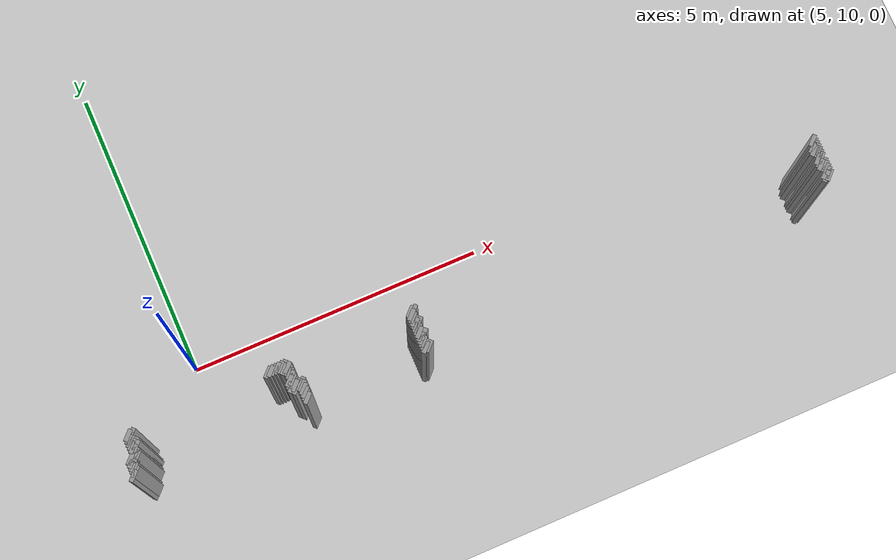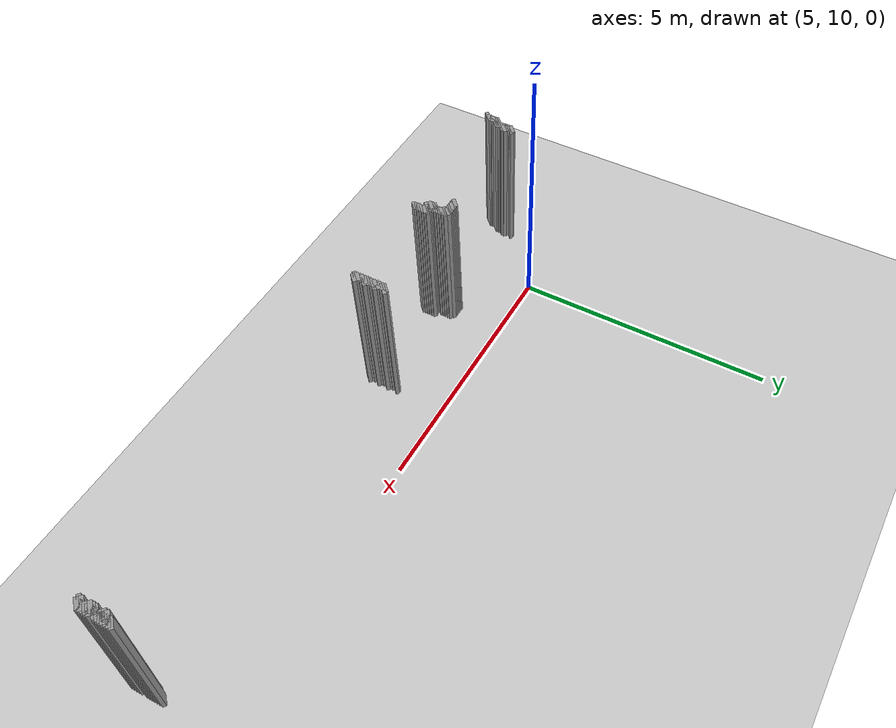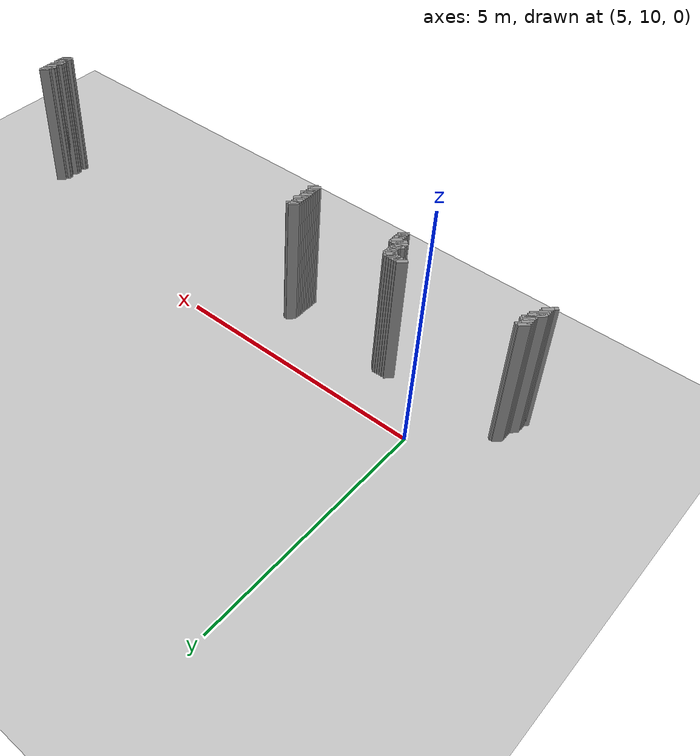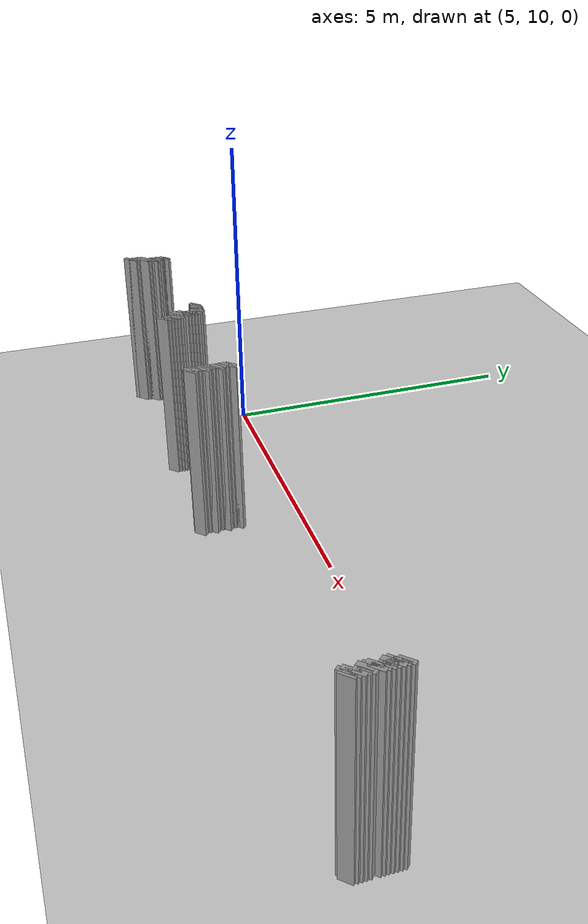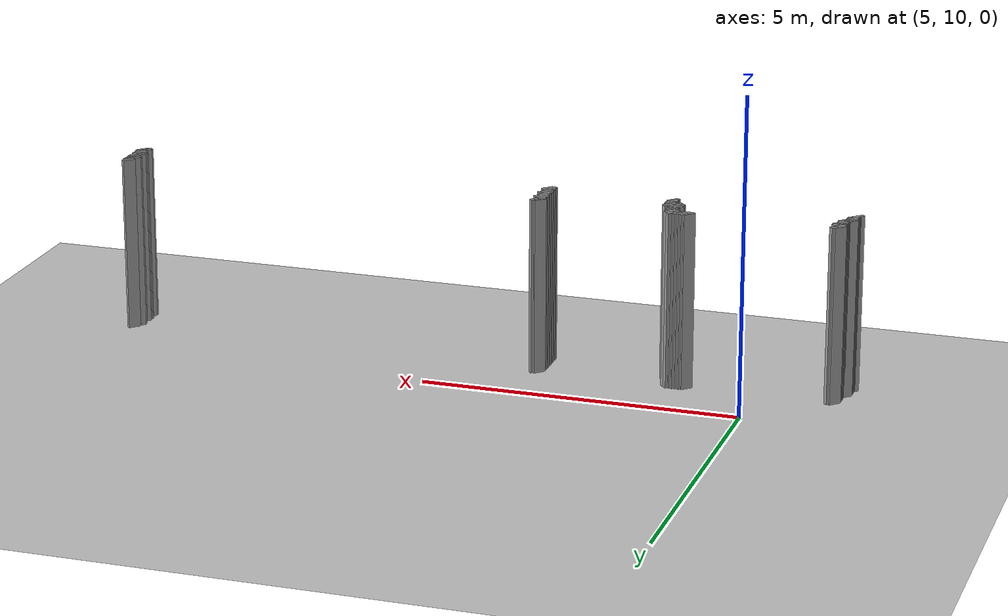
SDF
<sdf version="1.5">
 <world name="default">
  <include><uri>model://ground_plane</uri></include>
  <include><uri>model://sun</uri></include>
  <model name="grey_wall_1167">
   <static>1</static>
   <link name="link">
    <pose>6.1 9.0  1.4 0 0 -0.785398163397</pose>
    <collision name="collision"><geometry><box><size>0.0707106781187 .2  2.8</size></box></geometry></collision>
    <visual name="visual">
     <cast_shadows>0</cast_shadows>
     <geometry><box><size>0.0707106781187 .2  2.8</size></box></geometry>
     <material>
      <script>
       <uri>model://grey_wall/materials/scripts</uri>
       <uri>model://grey_wall/materials/textures</uri>
       <name>vrc/grey_wall</name>
      </script>
     </material>
    </visual>
   </link>
  </model>
  <model name="grey_wall_1168">
   <static>1</static>
   <link name="link">
    <pose>6.15 9.0  1.4 0 0 -0.785398163397</pose>
    <collision name="collision"><geometry><box><size>0.0707106781187 .2  2.8</size></box></geometry></collision>
    <visual name="visual">
     <cast_shadows>0</cast_shadows>
     <geometry><box><size>0.0707106781187 .2  2.8</size></box></geometry>
     <material>
      <script>
       <uri>model://grey_wall/materials/scripts</uri>
       <uri>model://grey_wall/materials/textures</uri>
       <name>vrc/grey_wall</name>
      </script>
     </material>
    </visual>
   </link>
  </model>
  <model name="grey_wall_1169">
   <static>1</static>
   <link name="link">
    <pose>6.2 9.0  1.4 0 0 -0.785398163397</pose>
    <collision name="collision"><geometry><box><size>0.0707106781187 .2  2.8</size></box></geometry></collision>
    <visual name="visual">
     <cast_shadows>0</cast_shadows>
     <geometry><box><size>0.0707106781187 .2  2.8</size></box></geometry>
     <material>
      <script>
       <uri>model://grey_wall/materials/scripts</uri>
       <uri>model://grey_wall/materials/textures</uri>
       <name>vrc/grey_wall</name>
      </script>
     </material>
    </visual>
   </link>
  </model>
  <model name="grey_wall_1170">
   <static>1</static>
   <link name="link">
    <pose>6.25 9.0  1.4 0 0 -0.785398163397</pose>
    <collision name="collision"><geometry><box><size>0.0707106781187 .2  2.8</size></box></geometry></collision>
    <visual name="visual">
     <cast_shadows>0</cast_shadows>
     <geometry><box><size>0.0707106781187 .2  2.8</size></box></geometry>
     <material>
      <script>
       <uri>model://grey_wall/materials/scripts</uri>
       <uri>model://grey_wall/materials/textures</uri>
       <name>vrc/grey_wall</name>
      </script>
     </material>
    </visual>
   </link>
  </model>
  <model name="grey_wall_1171">
   <static>1</static>
   <link name="link">
    <pose>6.3 9.0  1.4 0 0 -0.785398163397</pose>
    <collision name="collision"><geometry><box><size>0.0707106781187 .2  2.8</size></box></geometry></collision>
    <visual name="visual">
     <cast_shadows>0</cast_shadows>
     <geometry><box><size>0.0707106781187 .2  2.8</size></box></geometry>
     <material>
      <script>
       <uri>model://grey_wall/materials/scripts</uri>
       <uri>model://grey_wall/materials/textures</uri>
       <name>vrc/grey_wall</name>
      </script>
     </material>
    </visual>
   </link>
  </model>
  <model name="grey_wall_1172">
   <static>1</static>
   <link name="link">
    <pose>6.35 9.0  1.4 0 0 -0.785398163397</pose>
    <collision name="collision"><geometry><box><size>0.0707106781187 .2  2.8</size></box></geometry></collision>
    <visual name="visual">
     <cast_shadows>0</cast_shadows>
     <geometry><box><size>0.0707106781187 .2  2.8</size></box></geometry>
     <material>
      <script>
       <uri>model://grey_wall/materials/scripts</uri>
       <uri>model://grey_wall/materials/textures</uri>
       <name>vrc/grey_wall</name>
      </script>
     </material>
    </visual>
   </link>
  </model>
  <model name="grey_wall_1173">
   <static>1</static>
   <link name="link">
    <pose>8.45 9.0  1.4 0 0 -0.785398163397</pose>
    <collision name="collision"><geometry><box><size>0.0707106781187 .2  2.8</size></box></geometry></collision>
    <visual name="visual">
     <cast_shadows>0</cast_shadows>
     <geometry><box><size>0.0707106781187 .2  2.8</size></box></geometry>
     <material>
      <script>
       <uri>model://grey_wall/materials/scripts</uri>
       <uri>model://grey_wall/materials/textures</uri>
       <name>vrc/grey_wall</name>
      </script>
     </material>
    </visual>
   </link>
  </model>
  <model name="grey_wall_1174">
   <static>1</static>
   <link name="link">
    <pose>8.5 9.0  1.4 0 0 -0.785398163397</pose>
    <collision name="collision"><geometry><box><size>0.0707106781187 .2  2.8</size></box></geometry></collision>
    <visual name="visual">
     <cast_shadows>0</cast_shadows>
     <geometry><box><size>0.0707106781187 .2  2.8</size></box></geometry>
     <material>
      <script>
       <uri>model://grey_wall/materials/scripts</uri>
       <uri>model://grey_wall/materials/textures</uri>
       <name>vrc/grey_wall</name>
      </script>
     </material>
    </visual>
   </link>
  </model>
  <model name="grey_wall_1175">
   <static>1</static>
   <link name="link">
    <pose>15.25 9.0  1.4 0 0 -0.785398163397</pose>
    <collision name="collision"><geometry><box><size>0.0707106781187 .2  2.8</size></box></geometry></collision>
    <visual name="visual">
     <cast_shadows>0</cast_shadows>
     <geometry><box><size>0.0707106781187 .2  2.8</size></box></geometry>
     <material>
      <script>
       <uri>model://grey_wall/materials/scripts</uri>
       <uri>model://grey_wall/materials/textures</uri>
       <name>vrc/grey_wall</name>
      </script>
     </material>
    </visual>
   </link>
  </model>
  <model name="grey_wall_1176">
   <static>1</static>
   <link name="link">
    <pose>3.8 8.95  1.4 0 0 -0.785398163397</pose>
    <collision name="collision"><geometry><box><size>0.0707106781187 .2  2.8</size></box></geometry></collision>
    <visual name="visual">
     <cast_shadows>0</cast_shadows>
     <geometry><box><size>0.0707106781187 .2  2.8</size></box></geometry>
     <material>
      <script>
       <uri>model://grey_wall/materials/scripts</uri>
       <uri>model://grey_wall/materials/textures</uri>
       <name>vrc/grey_wall</name>
      </script>
     </material>
    </visual>
   </link>
  </model>
  <model name="grey_wall_1177">
   <static>1</static>
   <link name="link">
    <pose>3.85 8.95  1.4 0 0 -0.785398163397</pose>
    <collision name="collision"><geometry><box><size>0.0707106781187 .2  2.8</size></box></geometry></collision>
    <visual name="visual">
     <cast_shadows>0</cast_shadows>
     <geometry><box><size>0.0707106781187 .2  2.8</size></box></geometry>
     <material>
      <script>
       <uri>model://grey_wall/materials/scripts</uri>
       <uri>model://grey_wall/materials/textures</uri>
       <name>vrc/grey_wall</name>
      </script>
     </material>
    </visual>
   </link>
  </model>
  <model name="grey_wall_1178">
   <static>1</static>
   <link name="link">
    <pose>6.35 8.95  1.4 0 0 -0.785398163397</pose>
    <collision name="collision"><geometry><box><size>0.0707106781187 .2  2.8</size></box></geometry></collision>
    <visual name="visual">
     <cast_shadows>0</cast_shadows>
     <geometry><box><size>0.0707106781187 .2  2.8</size></box></geometry>
     <material>
      <script>
       <uri>model://grey_wall/materials/scripts</uri>
       <uri>model://grey_wall/materials/textures</uri>
       <name>vrc/grey_wall</name>
      </script>
     </material>
    </visual>
   </link>
  </model>
  <model name="grey_wall_1179">
   <static>1</static>
   <link name="link">
    <pose>6.4 8.95  1.4 0 0 -0.785398163397</pose>
    <collision name="collision"><geometry><box><size>0.0707106781187 .2  2.8</size></box></geometry></collision>
    <visual name="visual">
     <cast_shadows>0</cast_shadows>
     <geometry><box><size>0.0707106781187 .2  2.8</size></box></geometry>
     <material>
      <script>
       <uri>model://grey_wall/materials/scripts</uri>
       <uri>model://grey_wall/materials/textures</uri>
       <name>vrc/grey_wall</name>
      </script>
     </material>
    </visual>
   </link>
  </model>
  <model name="grey_wall_1180">
   <static>1</static>
   <link name="link">
    <pose>8.45 8.95  1.4 0 0 -0.785398163397</pose>
    <collision name="collision"><geometry><box><size>0.0707106781187 .2  2.8</size></box></geometry></collision>
    <visual name="visual">
     <cast_shadows>0</cast_shadows>
     <geometry><box><size>0.0707106781187 .2  2.8</size></box></geometry>
     <material>
      <script>
       <uri>model://grey_wall/materials/scripts</uri>
       <uri>model://grey_wall/materials/textures</uri>
       <name>vrc/grey_wall</name>
      </script>
     </material>
    </visual>
   </link>
  </model>
  <model name="grey_wall_1181">
   <static>1</static>
   <link name="link">
    <pose>15.25 8.95  1.4 0 0 -0.785398163397</pose>
    <collision name="collision"><geometry><box><size>0.0707106781187 .2  2.8</size></box></geometry></collision>
    <visual name="visual">
     <cast_shadows>0</cast_shadows>
     <geometry><box><size>0.0707106781187 .2  2.8</size></box></geometry>
     <material>
      <script>
       <uri>model://grey_wall/materials/scripts</uri>
       <uri>model://grey_wall/materials/textures</uri>
       <name>vrc/grey_wall</name>
      </script>
     </material>
    </visual>
   </link>
  </model>
  <model name="grey_wall_1182">
   <static>1</static>
   <link name="link">
    <pose>3.8 8.9  1.4 0 0 -0.785398163397</pose>
    <collision name="collision"><geometry><box><size>0.0707106781187 .2  2.8</size></box></geometry></collision>
    <visual name="visual">
     <cast_shadows>0</cast_shadows>
     <geometry><box><size>0.0707106781187 .2  2.8</size></box></geometry>
     <material>
      <script>
       <uri>model://grey_wall/materials/scripts</uri>
       <uri>model://grey_wall/materials/textures</uri>
       <name>vrc/grey_wall</name>
      </script>
     </material>
    </visual>
   </link>
  </model>
  <model name="grey_wall_1183">
   <static>1</static>
   <link name="link">
    <pose>6.4 8.9  1.4 0 0 -0.785398163397</pose>
    <collision name="collision"><geometry><box><size>0.0707106781187 .2  2.8</size></box></geometry></collision>
    <visual name="visual">
     <cast_shadows>0</cast_shadows>
     <geometry><box><size>0.0707106781187 .2  2.8</size></box></geometry>
     <material>
      <script>
       <uri>model://grey_wall/materials/scripts</uri>
       <uri>model://grey_wall/materials/textures</uri>
       <name>vrc/grey_wall</name>
      </script>
     </material>
    </visual>
   </link>
  </model>
  <model name="grey_wall_1184">
   <static>1</static>
   <link name="link">
    <pose>8.45 8.9  1.4 0 0 -0.785398163397</pose>
    <collision name="collision"><geometry><box><size>0.0707106781187 .2  2.8</size></box></geometry></collision>
    <visual name="visual">
     <cast_shadows>0</cast_shadows>
     <geometry><box><size>0.0707106781187 .2  2.8</size></box></geometry>
     <material>
      <script>
       <uri>model://grey_wall/materials/scripts</uri>
       <uri>model://grey_wall/materials/textures</uri>
       <name>vrc/grey_wall</name>
      </script>
     </material>
    </visual>
   </link>
  </model>
  <model name="grey_wall_1185">
   <static>1</static>
   <link name="link">
    <pose>15.2 8.9  1.4 0 0 -0.785398163397</pose>
    <collision name="collision"><geometry><box><size>0.0707106781187 .2  2.8</size></box></geometry></collision>
    <visual name="visual">
     <cast_shadows>0</cast_shadows>
     <geometry><box><size>0.0707106781187 .2  2.8</size></box></geometry>
     <material>
      <script>
       <uri>model://grey_wall/materials/scripts</uri>
       <uri>model://grey_wall/materials/textures</uri>
       <name>vrc/grey_wall</name>
      </script>
     </material>
    </visual>
   </link>
  </model>
  <model name="grey_wall_1186">
   <static>1</static>
   <link name="link">
    <pose>15.25 8.9  1.4 0 0 -0.785398163397</pose>
    <collision name="collision"><geometry><box><size>0.0707106781187 .2  2.8</size></box></geometry></collision>
    <visual name="visual">
     <cast_shadows>0</cast_shadows>
     <geometry><box><size>0.0707106781187 .2  2.8</size></box></geometry>
     <material>
      <script>
       <uri>model://grey_wall/materials/scripts</uri>
       <uri>model://grey_wall/materials/textures</uri>
       <name>vrc/grey_wall</name>
      </script>
     </material>
    </visual>
   </link>
  </model>
  <model name="grey_wall_1187">
   <static>1</static>
   <link name="link">
    <pose>3.8 8.85  1.4 0 0 -0.785398163397</pose>
    <collision name="collision"><geometry><box><size>0.0707106781187 .2  2.8</size></box></geometry></collision>
    <visual name="visual">
     <cast_shadows>0</cast_shadows>
     <geometry><box><size>0.0707106781187 .2  2.8</size></box></geometry>
     <material>
      <script>
       <uri>model://grey_wall/materials/scripts</uri>
       <uri>model://grey_wall/materials/textures</uri>
       <name>vrc/grey_wall</name>
      </script>
     </material>
    </visual>
   </link>
  </model>
  <model name="grey_wall_1188">
   <static>1</static>
   <link name="link">
    <pose>6.4 8.85  1.4 0 0 -0.785398163397</pose>
    <collision name="collision"><geometry><box><size>0.0707106781187 .2  2.8</size></box></geometry></collision>
    <visual name="visual">
     <cast_shadows>0</cast_shadows>
     <geometry><box><size>0.0707106781187 .2  2.8</size></box></geometry>
     <material>
      <script>
       <uri>model://grey_wall/materials/scripts</uri>
       <uri>model://grey_wall/materials/textures</uri>
       <name>vrc/grey_wall</name>
      </script>
     </material>
    </visual>
   </link>
  </model>
  <model name="grey_wall_1189">
   <static>1</static>
   <link name="link">
    <pose>8.45 8.85  1.4 0 0 -0.785398163397</pose>
    <collision name="collision"><geometry><box><size>0.0707106781187 .2  2.8</size></box></geometry></collision>
    <visual name="visual">
     <cast_shadows>0</cast_shadows>
     <geometry><box><size>0.0707106781187 .2  2.8</size></box></geometry>
     <material>
      <script>
       <uri>model://grey_wall/materials/scripts</uri>
       <uri>model://grey_wall/materials/textures</uri>
       <name>vrc/grey_wall</name>
      </script>
     </material>
    </visual>
   </link>
  </model>
  <model name="grey_wall_1190">
   <static>1</static>
   <link name="link">
    <pose>15.2 8.85  1.4 0 0 -0.785398163397</pose>
    <collision name="collision"><geometry><box><size>0.0707106781187 .2  2.8</size></box></geometry></collision>
    <visual name="visual">
     <cast_shadows>0</cast_shadows>
     <geometry><box><size>0.0707106781187 .2  2.8</size></box></geometry>
     <material>
      <script>
       <uri>model://grey_wall/materials/scripts</uri>
       <uri>model://grey_wall/materials/textures</uri>
       <name>vrc/grey_wall</name>
      </script>
     </material>
    </visual>
   </link>
  </model>
  <model name="grey_wall_1191">
   <static>1</static>
   <link name="link">
    <pose>15.25 8.85  1.4 0 0 -0.785398163397</pose>
    <collision name="collision"><geometry><box><size>0.0707106781187 .2  2.8</size></box></geometry></collision>
    <visual name="visual">
     <cast_shadows>0</cast_shadows>
     <geometry><box><size>0.0707106781187 .2  2.8</size></box></geometry>
     <material>
      <script>
       <uri>model://grey_wall/materials/scripts</uri>
       <uri>model://grey_wall/materials/textures</uri>
       <name>vrc/grey_wall</name>
      </script>
     </material>
    </visual>
   </link>
  </model>
  <model name="grey_wall_1192">
   <static>1</static>
   <link name="link">
    <pose>3.8 8.8  1.4 0 0 -0.785398163397</pose>
    <collision name="collision"><geometry><box><size>0.0707106781187 .2  2.8</size></box></geometry></collision>
    <visual name="visual">
     <cast_shadows>0</cast_shadows>
     <geometry><box><size>0.0707106781187 .2  2.8</size></box></geometry>
     <material>
      <script>
       <uri>model://grey_wall/materials/scripts</uri>
       <uri>model://grey_wall/materials/textures</uri>
       <name>vrc/grey_wall</name>
      </script>
     </material>
    </visual>
   </link>
  </model>
  <model name="grey_wall_1193">
   <static>1</static>
   <link name="link">
    <pose>3.85 8.8  1.4 0 0 -0.785398163397</pose>
    <collision name="collision"><geometry><box><size>0.0707106781187 .2  2.8</size></box></geometry></collision>
    <visual name="visual">
     <cast_shadows>0</cast_shadows>
     <geometry><box><size>0.0707106781187 .2  2.8</size></box></geometry>
     <material>
      <script>
       <uri>model://grey_wall/materials/scripts</uri>
       <uri>model://grey_wall/materials/textures</uri>
       <name>vrc/grey_wall</name>
      </script>
     </material>
    </visual>
   </link>
  </model>
  <model name="grey_wall_1194">
   <static>1</static>
   <link name="link">
    <pose>6.4 8.8  1.4 0 0 -0.785398163397</pose>
    <collision name="collision"><geometry><box><size>0.0707106781187 .2  2.8</size></box></geometry></collision>
    <visual name="visual">
     <cast_shadows>0</cast_shadows>
     <geometry><box><size>0.0707106781187 .2  2.8</size></box></geometry>
     <material>
      <script>
       <uri>model://grey_wall/materials/scripts</uri>
       <uri>model://grey_wall/materials/textures</uri>
       <name>vrc/grey_wall</name>
      </script>
     </material>
    </visual>
   </link>
  </model>
  <model name="grey_wall_1195">
   <static>1</static>
   <link name="link">
    <pose>8.45 8.8  1.4 0 0 -0.785398163397</pose>
    <collision name="collision"><geometry><box><size>0.0707106781187 .2  2.8</size></box></geometry></collision>
    <visual name="visual">
     <cast_shadows>0</cast_shadows>
     <geometry><box><size>0.0707106781187 .2  2.8</size></box></geometry>
     <material>
      <script>
       <uri>model://grey_wall/materials/scripts</uri>
       <uri>model://grey_wall/materials/textures</uri>
       <name>vrc/grey_wall</name>
      </script>
     </material>
    </visual>
   </link>
  </model>
  <model name="grey_wall_1196">
   <static>1</static>
   <link name="link">
    <pose>8.5 8.8  1.4 0 0 -0.785398163397</pose>
    <collision name="collision"><geometry><box><size>0.0707106781187 .2  2.8</size></box></geometry></collision>
    <visual name="visual">
     <cast_shadows>0</cast_shadows>
     <geometry><box><size>0.0707106781187 .2  2.8</size></box></geometry>
     <material>
      <script>
       <uri>model://grey_wall/materials/scripts</uri>
       <uri>model://grey_wall/materials/textures</uri>
       <name>vrc/grey_wall</name>
      </script>
     </material>
    </visual>
   </link>
  </model>
  <model name="grey_wall_1197">
   <static>1</static>
   <link name="link">
    <pose>15.25 8.8  1.4 0 0 -0.785398163397</pose>
    <collision name="collision"><geometry><box><size>0.0707106781187 .2  2.8</size></box></geometry></collision>
    <visual name="visual">
     <cast_shadows>0</cast_shadows>
     <geometry><box><size>0.0707106781187 .2  2.8</size></box></geometry>
     <material>
      <script>
       <uri>model://grey_wall/materials/scripts</uri>
       <uri>model://grey_wall/materials/textures</uri>
       <name>vrc/grey_wall</name>
      </script>
     </material>
    </visual>
   </link>
  </model>
  <model name="grey_wall_1198">
   <static>1</static>
   <link name="link">
    <pose>3.8 8.75  1.4 0 0 -0.785398163397</pose>
    <collision name="collision"><geometry><box><size>0.0707106781187 .2  2.8</size></box></geometry></collision>
    <visual name="visual">
     <cast_shadows>0</cast_shadows>
     <geometry><box><size>0.0707106781187 .2  2.8</size></box></geometry>
     <material>
      <script>
       <uri>model://grey_wall/materials/scripts</uri>
       <uri>model://grey_wall/materials/textures</uri>
       <name>vrc/grey_wall</name>
      </script>
     </material>
    </visual>
   </link>
  </model>
  <model name="grey_wall_1199">
   <static>1</static>
   <link name="link">
    <pose>3.85 8.75  1.4 0 0 -0.785398163397</pose>
    <collision name="collision"><geometry><box><size>0.0707106781187 .2  2.8</size></box></geometry></collision>
    <visual name="visual">
     <cast_shadows>0</cast_shadows>
     <geometry><box><size>0.0707106781187 .2  2.8</size></box></geometry>
     <material>
      <script>
       <uri>model://grey_wall/materials/scripts</uri>
       <uri>model://grey_wall/materials/textures</uri>
       <name>vrc/grey_wall</name>
      </script>
     </material>
    </visual>
   </link>
  </model>
  <model name="grey_wall_1200">
   <static>1</static>
   <link name="link">
    <pose>6.35 8.75  1.4 0 0 -0.785398163397</pose>
    <collision name="collision"><geometry><box><size>0.0707106781187 .2  2.8</size></box></geometry></collision>
    <visual name="visual">
     <cast_shadows>0</cast_shadows>
     <geometry><box><size>0.0707106781187 .2  2.8</size></box></geometry>
     <material>
      <script>
       <uri>model://grey_wall/materials/scripts</uri>
       <uri>model://grey_wall/materials/textures</uri>
       <name>vrc/grey_wall</name>
      </script>
     </material>
    </visual>
   </link>
  </model>
  <model name="grey_wall_1201">
   <static>1</static>
   <link name="link">
    <pose>6.4 8.75  1.4 0 0 -0.785398163397</pose>
    <collision name="collision"><geometry><box><size>0.0707106781187 .2  2.8</size></box></geometry></collision>
    <visual name="visual">
     <cast_shadows>0</cast_shadows>
     <geometry><box><size>0.0707106781187 .2  2.8</size></box></geometry>
     <material>
      <script>
       <uri>model://grey_wall/materials/scripts</uri>
       <uri>model://grey_wall/materials/textures</uri>
       <name>vrc/grey_wall</name>
      </script>
     </material>
    </visual>
   </link>
  </model>
  <model name="grey_wall_1202">
   <static>1</static>
   <link name="link">
    <pose>8.45 8.75  1.4 0 0 -0.785398163397</pose>
    <collision name="collision"><geometry><box><size>0.0707106781187 .2  2.8</size></box></geometry></collision>
    <visual name="visual">
     <cast_shadows>0</cast_shadows>
     <geometry><box><size>0.0707106781187 .2  2.8</size></box></geometry>
     <material>
      <script>
       <uri>model://grey_wall/materials/scripts</uri>
       <uri>model://grey_wall/materials/textures</uri>
       <name>vrc/grey_wall</name>
      </script>
     </material>
    </visual>
   </link>
  </model>
  <model name="grey_wall_1203">
   <static>1</static>
   <link name="link">
    <pose>15.25 8.75  1.4 0 0 -0.785398163397</pose>
    <collision name="collision"><geometry><box><size>0.0707106781187 .2  2.8</size></box></geometry></collision>
    <visual name="visual">
     <cast_shadows>0</cast_shadows>
     <geometry><box><size>0.0707106781187 .2  2.8</size></box></geometry>
     <material>
      <script>
       <uri>model://grey_wall/materials/scripts</uri>
       <uri>model://grey_wall/materials/textures</uri>
       <name>vrc/grey_wall</name>
      </script>
     </material>
    </visual>
   </link>
  </model>
  <model name="grey_wall_1204">
   <static>1</static>
   <link name="link">
    <pose>3.8 8.7  1.4 0 0 -0.785398163397</pose>
    <collision name="collision"><geometry><box><size>0.0707106781187 .2  2.8</size></box></geometry></collision>
    <visual name="visual">
     <cast_shadows>0</cast_shadows>
     <geometry><box><size>0.0707106781187 .2  2.8</size></box></geometry>
     <material>
      <script>
       <uri>model://grey_wall/materials/scripts</uri>
       <uri>model://grey_wall/materials/textures</uri>
       <name>vrc/grey_wall</name>
      </script>
     </material>
    </visual>
   </link>
  </model>
  <model name="grey_wall_1205">
   <static>1</static>
   <link name="link">
    <pose>6.35 8.7  1.4 0 0 -0.785398163397</pose>
    <collision name="collision"><geometry><box><size>0.0707106781187 .2  2.8</size></box></geometry></collision>
    <visual name="visual">
     <cast_shadows>0</cast_shadows>
     <geometry><box><size>0.0707106781187 .2  2.8</size></box></geometry>
     <material>
      <script>
       <uri>model://grey_wall/materials/scripts</uri>
       <uri>model://grey_wall/materials/textures</uri>
       <name>vrc/grey_wall</name>
      </script>
     </material>
    </visual>
   </link>
  </model>
  <model name="grey_wall_1206">
   <static>1</static>
   <link name="link">
    <pose>8.45 8.7  1.4 0 0 -0.785398163397</pose>
    <collision name="collision"><geometry><box><size>0.0707106781187 .2  2.8</size></box></geometry></collision>
    <visual name="visual">
     <cast_shadows>0</cast_shadows>
     <geometry><box><size>0.0707106781187 .2  2.8</size></box></geometry>
     <material>
      <script>
       <uri>model://grey_wall/materials/scripts</uri>
       <uri>model://grey_wall/materials/textures</uri>
       <name>vrc/grey_wall</name>
      </script>
     </material>
    </visual>
   </link>
  </model>
  <model name="grey_wall_1207">
   <static>1</static>
   <link name="link">
    <pose>15.2 8.7  1.4 0 0 -0.785398163397</pose>
    <collision name="collision"><geometry><box><size>0.0707106781187 .2  2.8</size></box></geometry></collision>
    <visual name="visual">
     <cast_shadows>0</cast_shadows>
     <geometry><box><size>0.0707106781187 .2  2.8</size></box></geometry>
     <material>
      <script>
       <uri>model://grey_wall/materials/scripts</uri>
       <uri>model://grey_wall/materials/textures</uri>
       <name>vrc/grey_wall</name>
      </script>
     </material>
    </visual>
   </link>
  </model>
  <model name="grey_wall_1208">
   <static>1</static>
   <link name="link">
    <pose>15.25 8.7  1.4 0 0 -0.785398163397</pose>
    <collision name="collision"><geometry><box><size>0.0707106781187 .2  2.8</size></box></geometry></collision>
    <visual name="visual">
     <cast_shadows>0</cast_shadows>
     <geometry><box><size>0.0707106781187 .2  2.8</size></box></geometry>
     <material>
      <script>
       <uri>model://grey_wall/materials/scripts</uri>
       <uri>model://grey_wall/materials/textures</uri>
       <name>vrc/grey_wall</name>
      </script>
     </material>
    </visual>
   </link>
  </model>
  <model name="grey_wall_1209">
   <static>1</static>
   <link name="link">
    <pose>3.8 8.65  1.4 0 0 -0.785398163397</pose>
    <collision name="collision"><geometry><box><size>0.0707106781187 .2  2.8</size></box></geometry></collision>
    <visual name="visual">
     <cast_shadows>0</cast_shadows>
     <geometry><box><size>0.0707106781187 .2  2.8</size></box></geometry>
     <material>
      <script>
       <uri>model://grey_wall/materials/scripts</uri>
       <uri>model://grey_wall/materials/textures</uri>
       <name>vrc/grey_wall</name>
      </script>
     </material>
    </visual>
   </link>
  </model>
  <model name="grey_wall_1210">
   <static>1</static>
   <link name="link">
    <pose>6.35 8.65  1.4 0 0 -0.785398163397</pose>
    <collision name="collision"><geometry><box><size>0.0707106781187 .2  2.8</size></box></geometry></collision>
    <visual name="visual">
     <cast_shadows>0</cast_shadows>
     <geometry><box><size>0.0707106781187 .2  2.8</size></box></geometry>
     <material>
      <script>
       <uri>model://grey_wall/materials/scripts</uri>
       <uri>model://grey_wall/materials/textures</uri>
       <name>vrc/grey_wall</name>
      </script>
     </material>
    </visual>
   </link>
  </model>
  <model name="grey_wall_1211">
   <static>1</static>
   <link name="link">
    <pose>6.4 8.65  1.4 0 0 -0.785398163397</pose>
    <collision name="collision"><geometry><box><size>0.0707106781187 .2  2.8</size></box></geometry></collision>
    <visual name="visual">
     <cast_shadows>0</cast_shadows>
     <geometry><box><size>0.0707106781187 .2  2.8</size></box></geometry>
     <material>
      <script>
       <uri>model://grey_wall/materials/scripts</uri>
       <uri>model://grey_wall/materials/textures</uri>
       <name>vrc/grey_wall</name>
      </script>
     </material>
    </visual>
   </link>
  </model>
  <model name="grey_wall_1212">
   <static>1</static>
   <link name="link">
    <pose>6.45 8.65  1.4 0 0 -0.785398163397</pose>
    <collision name="collision"><geometry><box><size>0.0707106781187 .2  2.8</size></box></geometry></collision>
    <visual name="visual">
     <cast_shadows>0</cast_shadows>
     <geometry><box><size>0.0707106781187 .2  2.8</size></box></geometry>
     <material>
      <script>
       <uri>model://grey_wall/materials/scripts</uri>
       <uri>model://grey_wall/materials/textures</uri>
       <name>vrc/grey_wall</name>
      </script>
     </material>
    </visual>
   </link>
  </model>
  <model name="grey_wall_1213">
   <static>1</static>
   <link name="link">
    <pose>6.5 8.65  1.4 0 0 -0.785398163397</pose>
    <collision name="collision"><geometry><box><size>0.0707106781187 .2  2.8</size></box></geometry></collision>
    <visual name="visual">
     <cast_shadows>0</cast_shadows>
     <geometry><box><size>0.0707106781187 .2  2.8</size></box></geometry>
     <material>
      <script>
       <uri>model://grey_wall/materials/scripts</uri>
       <uri>model://grey_wall/materials/textures</uri>
       <name>vrc/grey_wall</name>
      </script>
     </material>
    </visual>
   </link>
  </model>
  <model name="grey_wall_1214">
   <static>1</static>
   <link name="link">
    <pose>8.45 8.65  1.4 0 0 -0.785398163397</pose>
    <collision name="collision"><geometry><box><size>0.0707106781187 .2  2.8</size></box></geometry></collision>
    <visual name="visual">
     <cast_shadows>0</cast_shadows>
     <geometry><box><size>0.0707106781187 .2  2.8</size></box></geometry>
     <material>
      <script>
       <uri>model://grey_wall/materials/scripts</uri>
       <uri>model://grey_wall/materials/textures</uri>
       <name>vrc/grey_wall</name>
      </script>
     </material>
    </visual>
   </link>
  </model>
  <model name="grey_wall_1215">
   <static>1</static>
   <link name="link">
    <pose>15.2 8.65  1.4 0 0 -0.785398163397</pose>
    <collision name="collision"><geometry><box><size>0.0707106781187 .2  2.8</size></box></geometry></collision>
    <visual name="visual">
     <cast_shadows>0</cast_shadows>
     <geometry><box><size>0.0707106781187 .2  2.8</size></box></geometry>
     <material>
      <script>
       <uri>model://grey_wall/materials/scripts</uri>
       <uri>model://grey_wall/materials/textures</uri>
       <name>vrc/grey_wall</name>
      </script>
     </material>
    </visual>
   </link>
  </model>
  <model name="grey_wall_1216">
   <static>1</static>
   <link name="link">
    <pose>3.7 8.6  1.4 0 0 -0.785398163397</pose>
    <collision name="collision"><geometry><box><size>0.0707106781187 .2  2.8</size></box></geometry></collision>
    <visual name="visual">
     <cast_shadows>0</cast_shadows>
     <geometry><box><size>0.0707106781187 .2  2.8</size></box></geometry>
     <material>
      <script>
       <uri>model://grey_wall/materials/scripts</uri>
       <uri>model://grey_wall/materials/textures</uri>
       <name>vrc/grey_wall</name>
      </script>
     </material>
    </visual>
   </link>
  </model>
  <model name="grey_wall_1217">
   <static>1</static>
   <link name="link">
    <pose>3.75 8.6  1.4 0 0 -0.785398163397</pose>
    <collision name="collision"><geometry><box><size>0.0707106781187 .2  2.8</size></box></geometry></collision>
    <visual name="visual">
     <cast_shadows>0</cast_shadows>
     <geometry><box><size>0.0707106781187 .2  2.8</size></box></geometry>
     <material>
      <script>
       <uri>model://grey_wall/materials/scripts</uri>
       <uri>model://grey_wall/materials/textures</uri>
       <name>vrc/grey_wall</name>
      </script>
     </material>
    </visual>
   </link>
  </model>
  <model name="grey_wall_1218">
   <static>1</static>
   <link name="link">
    <pose>3.8 8.6  1.4 0 0 -0.785398163397</pose>
    <collision name="collision"><geometry><box><size>0.0707106781187 .2  2.8</size></box></geometry></collision>
    <visual name="visual">
     <cast_shadows>0</cast_shadows>
     <geometry><box><size>0.0707106781187 .2  2.8</size></box></geometry>
     <material>
      <script>
       <uri>model://grey_wall/materials/scripts</uri>
       <uri>model://grey_wall/materials/textures</uri>
       <name>vrc/grey_wall</name>
      </script>
     </material>
    </visual>
   </link>
  </model>
  <model name="grey_wall_1219">
   <static>1</static>
   <link name="link">
    <pose>6.4 8.6  1.4 0 0 -0.785398163397</pose>
    <collision name="collision"><geometry><box><size>0.0707106781187 .2  2.8</size></box></geometry></collision>
    <visual name="visual">
     <cast_shadows>0</cast_shadows>
     <geometry><box><size>0.0707106781187 .2  2.8</size></box></geometry>
     <material>
      <script>
       <uri>model://grey_wall/materials/scripts</uri>
       <uri>model://grey_wall/materials/textures</uri>
       <name>vrc/grey_wall</name>
      </script>
     </material>
    </visual>
   </link>
  </model>
  <model name="grey_wall_1220">
   <static>1</static>
   <link name="link">
    <pose>6.5 8.6  1.4 0 0 -0.785398163397</pose>
    <collision name="collision"><geometry><box><size>0.0707106781187 .2  2.8</size></box></geometry></collision>
    <visual name="visual">
     <cast_shadows>0</cast_shadows>
     <geometry><box><size>0.0707106781187 .2  2.8</size></box></geometry>
     <material>
      <script>
       <uri>model://grey_wall/materials/scripts</uri>
       <uri>model://grey_wall/materials/textures</uri>
       <name>vrc/grey_wall</name>
      </script>
     </material>
    </visual>
   </link>
  </model>
  <model name="grey_wall_1221">
   <static>1</static>
   <link name="link">
    <pose>8.45 8.6  1.4 0 0 -0.785398163397</pose>
    <collision name="collision"><geometry><box><size>0.0707106781187 .2  2.8</size></box></geometry></collision>
    <visual name="visual">
     <cast_shadows>0</cast_shadows>
     <geometry><box><size>0.0707106781187 .2  2.8</size></box></geometry>
     <material>
      <script>
       <uri>model://grey_wall/materials/scripts</uri>
       <uri>model://grey_wall/materials/textures</uri>
       <name>vrc/grey_wall</name>
      </script>
     </material>
    </visual>
   </link>
  </model>
  <model name="grey_wall_1222">
   <static>1</static>
   <link name="link">
    <pose>8.5 8.6  1.4 0 0 -0.785398163397</pose>
    <collision name="collision"><geometry><box><size>0.0707106781187 .2  2.8</size></box></geometry></collision>
    <visual name="visual">
     <cast_shadows>0</cast_shadows>
     <geometry><box><size>0.0707106781187 .2  2.8</size></box></geometry>
     <material>
      <script>
       <uri>model://grey_wall/materials/scripts</uri>
       <uri>model://grey_wall/materials/textures</uri>
       <name>vrc/grey_wall</name>
      </script>
     </material>
    </visual>
   </link>
  </model>
  <model name="grey_wall_1223">
   <static>1</static>
   <link name="link">
    <pose>15.2 8.6  1.4 0 0 -0.785398163397</pose>
    <collision name="collision"><geometry><box><size>0.0707106781187 .2  2.8</size></box></geometry></collision>
    <visual name="visual">
     <cast_shadows>0</cast_shadows>
     <geometry><box><size>0.0707106781187 .2  2.8</size></box></geometry>
     <material>
      <script>
       <uri>model://grey_wall/materials/scripts</uri>
       <uri>model://grey_wall/materials/textures</uri>
       <name>vrc/grey_wall</name>
      </script>
     </material>
    </visual>
   </link>
  </model>
  <model name="grey_wall_1224">
   <static>1</static>
   <link name="link">
    <pose>15.25 8.6  1.4 0 0 -0.785398163397</pose>
    <collision name="collision"><geometry><box><size>0.0707106781187 .2  2.8</size></box></geometry></collision>
    <visual name="visual">
     <cast_shadows>0</cast_shadows>
     <geometry><box><size>0.0707106781187 .2  2.8</size></box></geometry>
     <material>
      <script>
       <uri>model://grey_wall/materials/scripts</uri>
       <uri>model://grey_wall/materials/textures</uri>
       <name>vrc/grey_wall</name>
      </script>
     </material>
    </visual>
   </link>
  </model>
  <model name="grey_wall_1225">
   <static>1</static>
   <link name="link">
    <pose>3.7 8.55  1.4 0 0 -0.785398163397</pose>
    <collision name="collision"><geometry><box><size>0.0707106781187 .2  2.8</size></box></geometry></collision>
    <visual name="visual">
     <cast_shadows>0</cast_shadows>
     <geometry><box><size>0.0707106781187 .2  2.8</size></box></geometry>
     <material>
      <script>
       <uri>model://grey_wall/materials/scripts</uri>
       <uri>model://grey_wall/materials/textures</uri>
       <name>vrc/grey_wall</name>
      </script>
     </material>
    </visual>
   </link>
  </model>
  <model name="grey_wall_1226">
   <static>1</static>
   <link name="link">
    <pose>6.5 8.55  1.4 0 0 -0.785398163397</pose>
    <collision name="collision"><geometry><box><size>0.0707106781187 .2  2.8</size></box></geometry></collision>
    <visual name="visual">
     <cast_shadows>0</cast_shadows>
     <geometry><box><size>0.0707106781187 .2  2.8</size></box></geometry>
     <material>
      <script>
       <uri>model://grey_wall/materials/scripts</uri>
       <uri>model://grey_wall/materials/textures</uri>
       <name>vrc/grey_wall</name>
      </script>
     </material>
    </visual>
   </link>
  </model>
  <model name="grey_wall_1227">
   <static>1</static>
   <link name="link">
    <pose>8.45 8.55  1.4 0 0 -0.785398163397</pose>
    <collision name="collision"><geometry><box><size>0.0707106781187 .2  2.8</size></box></geometry></collision>
    <visual name="visual">
     <cast_shadows>0</cast_shadows>
     <geometry><box><size>0.0707106781187 .2  2.8</size></box></geometry>
     <material>
      <script>
       <uri>model://grey_wall/materials/scripts</uri>
       <uri>model://grey_wall/materials/textures</uri>
       <name>vrc/grey_wall</name>
      </script>
     </material>
    </visual>
   </link>
  </model>
  <model name="grey_wall_1228">
   <static>1</static>
   <link name="link">
    <pose>15.25 8.55  1.4 0 0 -0.785398163397</pose>
    <collision name="collision"><geometry><box><size>0.0707106781187 .2  2.8</size></box></geometry></collision>
    <visual name="visual">
     <cast_shadows>0</cast_shadows>
     <geometry><box><size>0.0707106781187 .2  2.8</size></box></geometry>
     <material>
      <script>
       <uri>model://grey_wall/materials/scripts</uri>
       <uri>model://grey_wall/materials/textures</uri>
       <name>vrc/grey_wall</name>
      </script>
     </material>
    </visual>
   </link>
  </model>
  <model name="grey_wall_1229">
   <static>1</static>
   <link name="link">
    <pose>3.7 8.5  1.4 0 0 -0.785398163397</pose>
    <collision name="collision"><geometry><box><size>0.0707106781187 .2  2.8</size></box></geometry></collision>
    <visual name="visual">
     <cast_shadows>0</cast_shadows>
     <geometry><box><size>0.0707106781187 .2  2.8</size></box></geometry>
     <material>
      <script>
       <uri>model://grey_wall/materials/scripts</uri>
       <uri>model://grey_wall/materials/textures</uri>
       <name>vrc/grey_wall</name>
      </script>
     </material>
    </visual>
   </link>
  </model>
  <model name="grey_wall_1230">
   <static>1</static>
   <link name="link">
    <pose>6.5 8.5  1.4 0 0 -0.785398163397</pose>
    <collision name="collision"><geometry><box><size>0.0707106781187 .2  2.8</size></box></geometry></collision>
    <visual name="visual">
     <cast_shadows>0</cast_shadows>
     <geometry><box><size>0.0707106781187 .2  2.8</size></box></geometry>
     <material>
      <script>
       <uri>model://grey_wall/materials/scripts</uri>
       <uri>model://grey_wall/materials/textures</uri>
       <name>vrc/grey_wall</name>
      </script>
     </material>
    </visual>
   </link>
  </model>
  <model name="grey_wall_1231">
   <static>1</static>
   <link name="link">
    <pose>8.45 8.5  1.4 0 0 -0.785398163397</pose>
    <collision name="collision"><geometry><box><size>0.0707106781187 .2  2.8</size></box></geometry></collision>
    <visual name="visual">
     <cast_shadows>0</cast_shadows>
     <geometry><box><size>0.0707106781187 .2  2.8</size></box></geometry>
     <material>
      <script>
       <uri>model://grey_wall/materials/scripts</uri>
       <uri>model://grey_wall/materials/textures</uri>
       <name>vrc/grey_wall</name>
      </script>
     </material>
    </visual>
   </link>
  </model>
  <model name="grey_wall_1232">
   <static>1</static>
   <link name="link">
    <pose>15.25 8.5  1.4 0 0 -0.785398163397</pose>
    <collision name="collision"><geometry><box><size>0.0707106781187 .2  2.8</size></box></geometry></collision>
    <visual name="visual">
     <cast_shadows>0</cast_shadows>
     <geometry><box><size>0.0707106781187 .2  2.8</size></box></geometry>
     <material>
      <script>
       <uri>model://grey_wall/materials/scripts</uri>
       <uri>model://grey_wall/materials/textures</uri>
       <name>vrc/grey_wall</name>
      </script>
     </material>
    </visual>
   </link>
  </model>
  <model name="grey_wall_1233">
   <static>1</static>
   <link name="link">
    <pose>3.7 8.45  1.4 0 0 -0.785398163397</pose>
    <collision name="collision"><geometry><box><size>0.0707106781187 .2  2.8</size></box></geometry></collision>
    <visual name="visual">
     <cast_shadows>0</cast_shadows>
     <geometry><box><size>0.0707106781187 .2  2.8</size></box></geometry>
     <material>
      <script>
       <uri>model://grey_wall/materials/scripts</uri>
       <uri>model://grey_wall/materials/textures</uri>
       <name>vrc/grey_wall</name>
      </script>
     </material>
    </visual>
   </link>
  </model>
  <model name="grey_wall_1234">
   <static>1</static>
   <link name="link">
    <pose>6.5 8.45  1.4 0 0 -0.785398163397</pose>
    <collision name="collision"><geometry><box><size>0.0707106781187 .2  2.8</size></box></geometry></collision>
    <visual name="visual">
     <cast_shadows>0</cast_shadows>
     <geometry><box><size>0.0707106781187 .2  2.8</size></box></geometry>
     <material>
      <script>
       <uri>model://grey_wall/materials/scripts</uri>
       <uri>model://grey_wall/materials/textures</uri>
       <name>vrc/grey_wall</name>
      </script>
     </material>
    </visual>
   </link>
  </model>
  <model name="grey_wall_1235">
   <static>1</static>
   <link name="link">
    <pose>8.45 8.45  1.4 0 0 -0.785398163397</pose>
    <collision name="collision"><geometry><box><size>0.0707106781187 .2  2.8</size></box></geometry></collision>
    <visual name="visual">
     <cast_shadows>0</cast_shadows>
     <geometry><box><size>0.0707106781187 .2  2.8</size></box></geometry>
     <material>
      <script>
       <uri>model://grey_wall/materials/scripts</uri>
       <uri>model://grey_wall/materials/textures</uri>
       <name>vrc/grey_wall</name>
      </script>
     </material>
    </visual>
   </link>
  </model>
  <model name="grey_wall_1236">
   <static>1</static>
   <link name="link">
    <pose>15.2 8.45  1.4 0 0 -0.785398163397</pose>
    <collision name="collision"><geometry><box><size>0.0707106781187 .2  2.8</size></box></geometry></collision>
    <visual name="visual">
     <cast_shadows>0</cast_shadows>
     <geometry><box><size>0.0707106781187 .2  2.8</size></box></geometry>
     <material>
      <script>
       <uri>model://grey_wall/materials/scripts</uri>
       <uri>model://grey_wall/materials/textures</uri>
       <name>vrc/grey_wall</name>
      </script>
     </material>
    </visual>
   </link>
  </model>
  <model name="grey_wall_1237">
   <static>1</static>
   <link name="link">
    <pose>15.25 8.45  1.4 0 0 -0.785398163397</pose>
    <collision name="collision"><geometry><box><size>0.0707106781187 .2  2.8</size></box></geometry></collision>
    <visual name="visual">
     <cast_shadows>0</cast_shadows>
     <geometry><box><size>0.0707106781187 .2  2.8</size></box></geometry>
     <material>
      <script>
       <uri>model://grey_wall/materials/scripts</uri>
       <uri>model://grey_wall/materials/textures</uri>
       <name>vrc/grey_wall</name>
      </script>
     </material>
    </visual>
   </link>
  </model>
  <model name="grey_wall_1238">
   <static>1</static>
   <link name="link">
    <pose>3.7 8.4  1.4 0 0 -0.785398163397</pose>
    <collision name="collision"><geometry><box><size>0.0707106781187 .2  2.8</size></box></geometry></collision>
    <visual name="visual">
     <cast_shadows>0</cast_shadows>
     <geometry><box><size>0.0707106781187 .2  2.8</size></box></geometry>
     <material>
      <script>
       <uri>model://grey_wall/materials/scripts</uri>
       <uri>model://grey_wall/materials/textures</uri>
       <name>vrc/grey_wall</name>
      </script>
     </material>
    </visual>
   </link>
  </model>
  <model name="grey_wall_1239">
   <static>1</static>
   <link name="link">
    <pose>6.5 8.4  1.4 0 0 -0.785398163397</pose>
    <collision name="collision"><geometry><box><size>0.0707106781187 .2  2.8</size></box></geometry></collision>
    <visual name="visual">
     <cast_shadows>0</cast_shadows>
     <geometry><box><size>0.0707106781187 .2  2.8</size></box></geometry>
     <material>
      <script>
       <uri>model://grey_wall/materials/scripts</uri>
       <uri>model://grey_wall/materials/textures</uri>
       <name>vrc/grey_wall</name>
      </script>
     </material>
    </visual>
   </link>
  </model>
  <model name="grey_wall_1240">
   <static>1</static>
   <link name="link">
    <pose>8.45 8.4  1.4 0 0 -0.785398163397</pose>
    <collision name="collision"><geometry><box><size>0.0707106781187 .2  2.8</size></box></geometry></collision>
    <visual name="visual">
     <cast_shadows>0</cast_shadows>
     <geometry><box><size>0.0707106781187 .2  2.8</size></box></geometry>
     <material>
      <script>
       <uri>model://grey_wall/materials/scripts</uri>
       <uri>model://grey_wall/materials/textures</uri>
       <name>vrc/grey_wall</name>
      </script>
     </material>
    </visual>
   </link>
  </model>
  <model name="grey_wall_1241">
   <static>1</static>
   <link name="link">
    <pose>8.5 8.4  1.4 0 0 -0.785398163397</pose>
    <collision name="collision"><geometry><box><size>0.0707106781187 .2  2.8</size></box></geometry></collision>
    <visual name="visual">
     <cast_shadows>0</cast_shadows>
     <geometry><box><size>0.0707106781187 .2  2.8</size></box></geometry>
     <material>
      <script>
       <uri>model://grey_wall/materials/scripts</uri>
       <uri>model://grey_wall/materials/textures</uri>
       <name>vrc/grey_wall</name>
      </script>
     </material>
    </visual>
   </link>
  </model>
  <model name="grey_wall_1242">
   <static>1</static>
   <link name="link">
    <pose>15.2 8.4  1.4 0 0 -0.785398163397</pose>
    <collision name="collision"><geometry><box><size>0.0707106781187 .2  2.8</size></box></geometry></collision>
    <visual name="visual">
     <cast_shadows>0</cast_shadows>
     <geometry><box><size>0.0707106781187 .2  2.8</size></box></geometry>
     <material>
      <script>
       <uri>model://grey_wall/materials/scripts</uri>
       <uri>model://grey_wall/materials/textures</uri>
       <name>vrc/grey_wall</name>
      </script>
     </material>
    </visual>
   </link>
  </model>
  <model name="grey_wall_1243">
   <static>1</static>
   <link name="link">
    <pose>15.25 8.4  1.4 0 0 -0.785398163397</pose>
    <collision name="collision"><geometry><box><size>0.0707106781187 .2  2.8</size></box></geometry></collision>
    <visual name="visual">
     <cast_shadows>0</cast_shadows>
     <geometry><box><size>0.0707106781187 .2  2.8</size></box></geometry>
     <material>
      <script>
       <uri>model://grey_wall/materials/scripts</uri>
       <uri>model://grey_wall/materials/textures</uri>
       <name>vrc/grey_wall</name>
      </script>
     </material>
    </visual>
   </link>
  </model>
  <model name="grey_wall_1244">
   <static>1</static>
   <link name="link">
    <pose>3.65 8.35  1.4 0 0 -0.785398163397</pose>
    <collision name="collision"><geometry><box><size>0.0707106781187 .2  2.8</size></box></geometry></collision>
    <visual name="visual">
     <cast_shadows>0</cast_shadows>
     <geometry><box><size>0.0707106781187 .2  2.8</size></box></geometry>
     <material>
      <script>
       <uri>model://grey_wall/materials/scripts</uri>
       <uri>model://grey_wall/materials/textures</uri>
       <name>vrc/grey_wall</name>
      </script>
     </material>
    </visual>
   </link>
  </model>
 </world>
</sdf>
